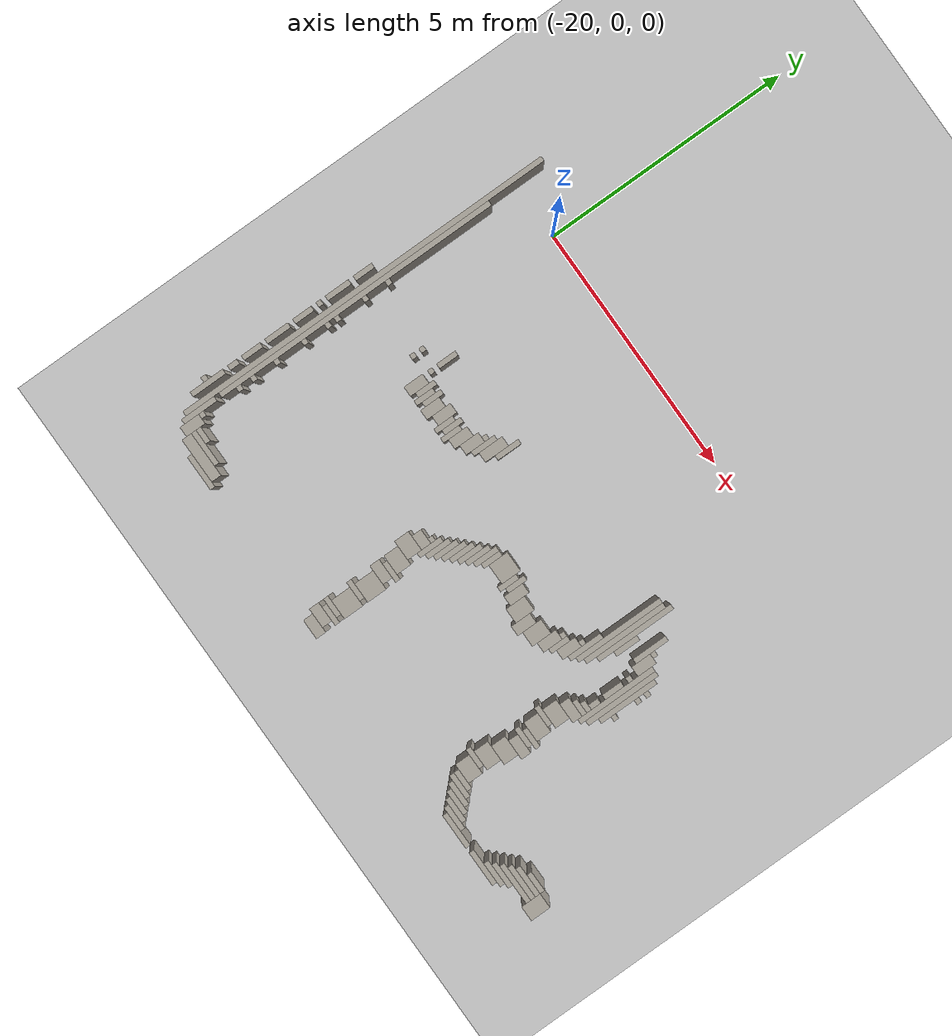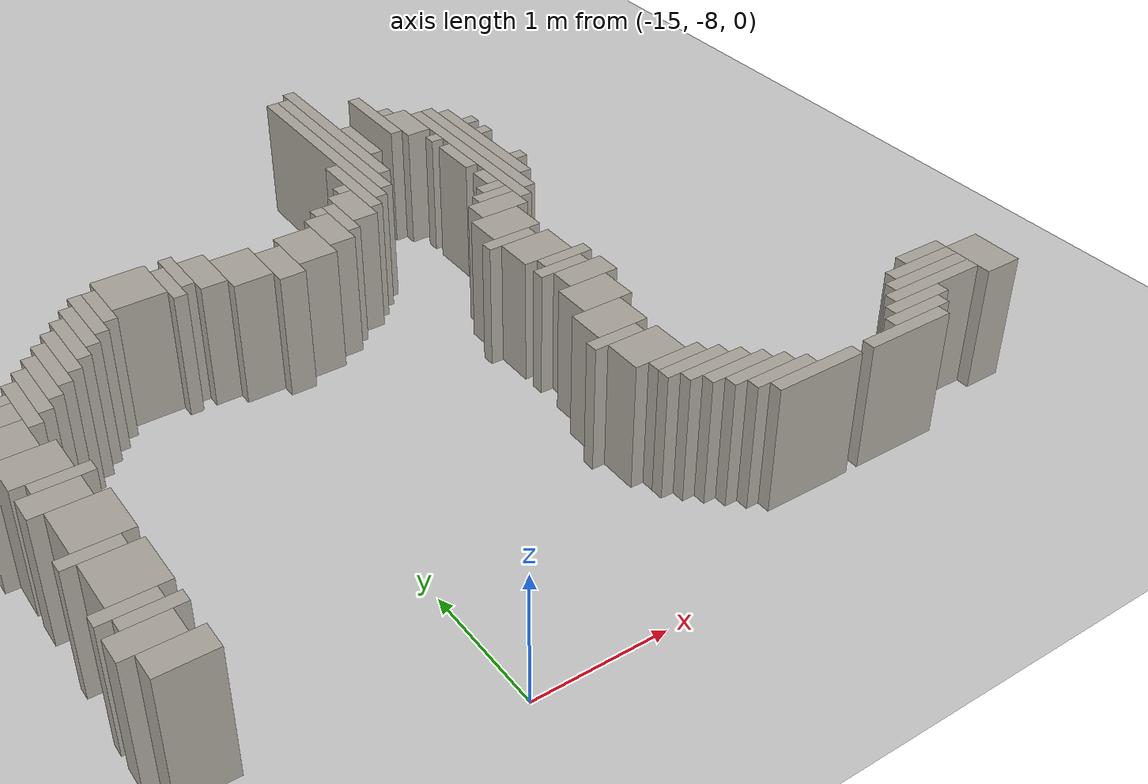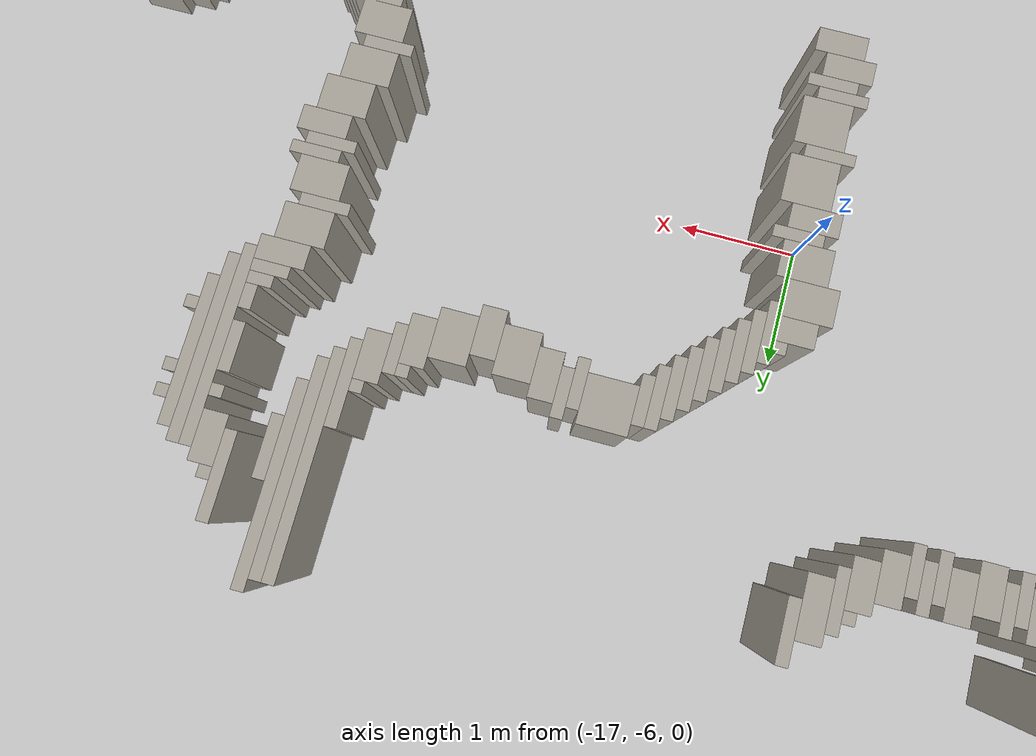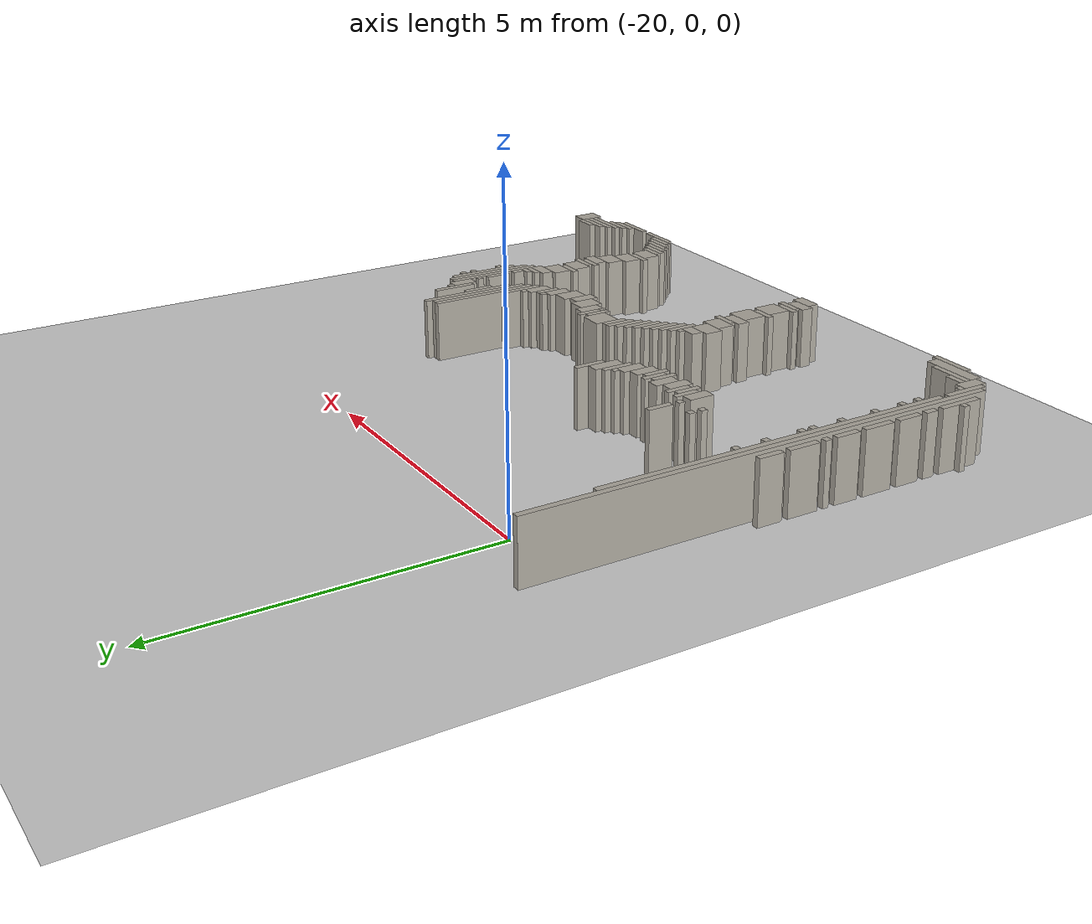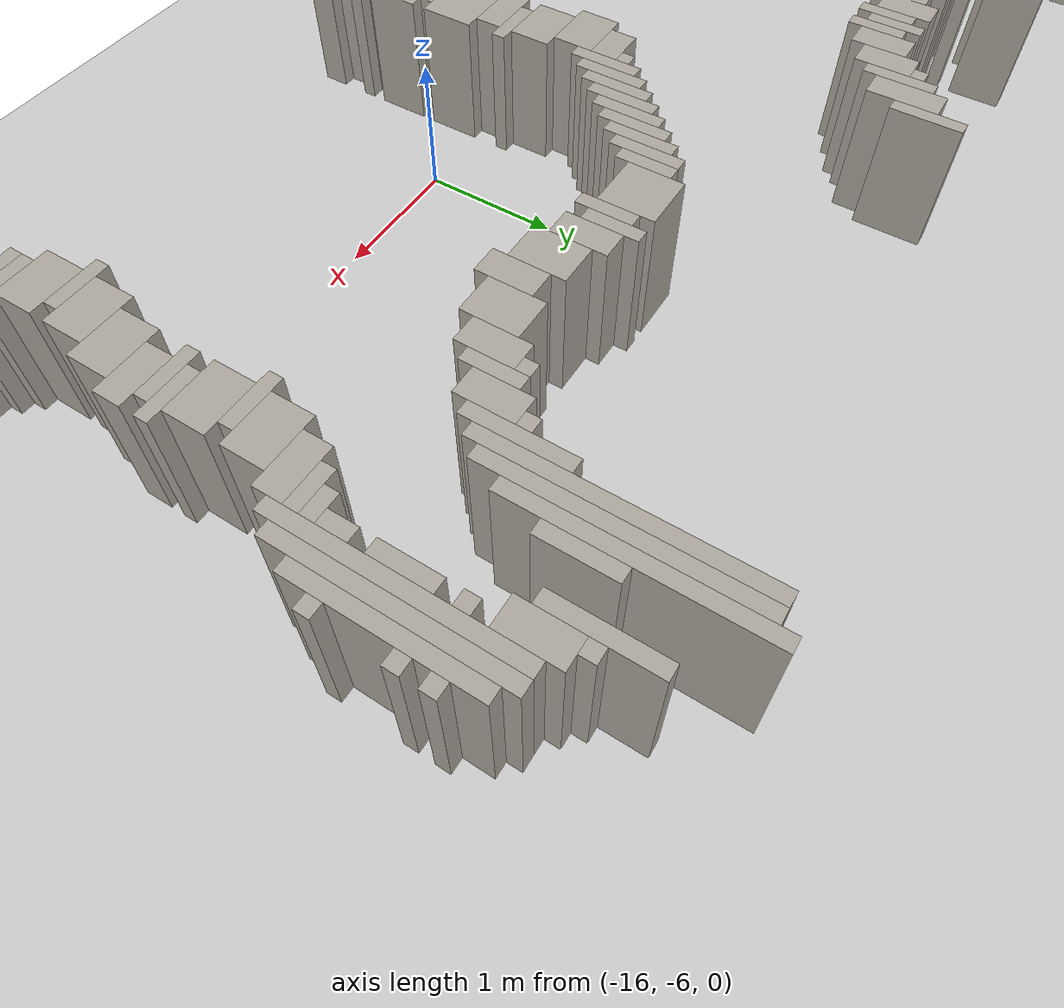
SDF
<sdf version="1.6">
 <world name="willow_office">
  <include><uri>model://sun</uri></include>
  <include><uri>model://ground_plane</uri></include>
  <model name="willow_office_walls">
   <static>true</static>
   <link name="w0002">
    <pose>-20.135 -7.488 0.500 0 0 0</pose>
    <collision name="c"><geometry><box><size>0.700 0.100 1.000</size></box></geometry></collision>
    <visual name="v">
     <geometry><box><size>0.700 0.100 1.000</size></box></geometry>
     <material><ambient>0.68 0.66 0.62 1</ambient><diffuse>0.68 0.66 0.62 1</diffuse></material>
    </visual>
   </link>
   <link name="w0003">
    <pose>-16.785 -7.438 0.500 0 0 0</pose>
    <collision name="c"><geometry><box><size>0.400 0.200 1.000</size></box></geometry></collision>
    <visual name="v">
     <geometry><box><size>0.400 0.200 1.000</size></box></geometry>
     <material><ambient>0.68 0.66 0.62 1</ambient><diffuse>0.68 0.66 0.62 1</diffuse></material>
    </visual>
   </link>
   <link name="w0004">
    <pose>-12.435 -7.488 0.500 0 0 0</pose>
    <collision name="c"><geometry><box><size>0.700 0.100 1.000</size></box></geometry></collision>
    <visual name="v">
     <geometry><box><size>0.700 0.100 1.000</size></box></geometry>
     <material><ambient>0.68 0.66 0.62 1</ambient><diffuse>0.68 0.66 0.62 1</diffuse></material>
    </visual>
   </link>
   <link name="w0005">
    <pose>-11.635 -7.488 0.500 0 0 0</pose>
    <collision name="c"><geometry><box><size>0.700 0.100 1.000</size></box></geometry></collision>
    <visual name="v">
     <geometry><box><size>0.700 0.100 1.000</size></box></geometry>
     <material><ambient>0.68 0.66 0.62 1</ambient><diffuse>0.68 0.66 0.62 1</diffuse></material>
    </visual>
   </link>
   <link name="w0012">
    <pose>-20.335 -7.338 0.500 0 0 0</pose>
    <collision name="c"><geometry><box><size>0.900 0.200 1.000</size></box></geometry></collision>
    <visual name="v">
     <geometry><box><size>0.900 0.200 1.000</size></box></geometry>
     <material><ambient>0.68 0.66 0.62 1</ambient><diffuse>0.68 0.66 0.62 1</diffuse></material>
    </visual>
   </link>
   <link name="w0013">
    <pose>-12.635 -7.388 0.500 0 0 0</pose>
    <collision name="c"><geometry><box><size>0.500 0.100 1.000</size></box></geometry></collision>
    <visual name="v">
     <geometry><box><size>0.500 0.100 1.000</size></box></geometry>
     <material><ambient>0.68 0.66 0.62 1</ambient><diffuse>0.68 0.66 0.62 1</diffuse></material>
    </visual>
   </link>
   <link name="w0014">
    <pose>-11.435 -7.388 0.500 0 0 0</pose>
    <collision name="c"><geometry><box><size>0.500 0.100 1.000</size></box></geometry></collision>
    <visual name="v">
     <geometry><box><size>0.500 0.100 1.000</size></box></geometry>
     <material><ambient>0.68 0.66 0.62 1</ambient><diffuse>0.68 0.66 0.62 1</diffuse></material>
    </visual>
   </link>
   <link name="w0018">
    <pose>-20.885 -7.138 0.500 0 0 0</pose>
    <collision name="c"><geometry><box><size>0.200 0.400 1.000</size></box></geometry></collision>
    <visual name="v">
     <geometry><box><size>0.200 0.400 1.000</size></box></geometry>
     <material><ambient>0.68 0.66 0.62 1</ambient><diffuse>0.68 0.66 0.62 1</diffuse></material>
    </visual>
   </link>
   <link name="w0019">
    <pose>-16.885 -7.238 0.500 0 0 0</pose>
    <collision name="c"><geometry><box><size>0.400 0.200 1.000</size></box></geometry></collision>
    <visual name="v">
     <geometry><box><size>0.400 0.200 1.000</size></box></geometry>
     <material><ambient>0.68 0.66 0.62 1</ambient><diffuse>0.68 0.66 0.62 1</diffuse></material>
    </visual>
   </link>
   <link name="w0020">
    <pose>-12.735 -7.288 0.500 0 0 0</pose>
    <collision name="c"><geometry><box><size>0.500 0.100 1.000</size></box></geometry></collision>
    <visual name="v">
     <geometry><box><size>0.500 0.100 1.000</size></box></geometry>
     <material><ambient>0.68 0.66 0.62 1</ambient><diffuse>0.68 0.66 0.62 1</diffuse></material>
    </visual>
   </link>
   <link name="w0021">
    <pose>-11.335 -7.288 0.500 0 0 0</pose>
    <collision name="c"><geometry><box><size>0.500 0.100 1.000</size></box></geometry></collision>
    <visual name="v">
     <geometry><box><size>0.500 0.100 1.000</size></box></geometry>
     <material><ambient>0.68 0.66 0.62 1</ambient><diffuse>0.68 0.66 0.62 1</diffuse></material>
    </visual>
   </link>
   <link name="w0022">
    <pose>-10.535 -7.138 0.500 0 0 0</pose>
    <collision name="c"><geometry><box><size>0.300 0.400 1.000</size></box></geometry></collision>
    <visual name="v">
     <geometry><box><size>0.300 0.400 1.000</size></box></geometry>
     <material><ambient>0.68 0.66 0.62 1</ambient><diffuse>0.68 0.66 0.62 1</diffuse></material>
    </visual>
   </link>
   <link name="w0028">
    <pose>-21.035 -6.888 0.500 0 0 0</pose>
    <collision name="c"><geometry><box><size>0.100 0.700 1.000</size></box></geometry></collision>
    <visual name="v">
     <geometry><box><size>0.100 0.700 1.000</size></box></geometry>
     <material><ambient>0.68 0.66 0.62 1</ambient><diffuse>0.68 0.66 0.62 1</diffuse></material>
    </visual>
   </link>
   <link name="w0029">
    <pose>-20.435 -7.188 0.500 0 0 0</pose>
    <collision name="c"><geometry><box><size>0.700 0.100 1.000</size></box></geometry></collision>
    <visual name="v">
     <geometry><box><size>0.700 0.100 1.000</size></box></geometry>
     <material><ambient>0.68 0.66 0.62 1</ambient><diffuse>0.68 0.66 0.62 1</diffuse></material>
    </visual>
   </link>
   <link name="w0030">
    <pose>-12.835 -7.188 0.500 0 0 0</pose>
    <collision name="c"><geometry><box><size>0.500 0.100 1.000</size></box></geometry></collision>
    <visual name="v">
     <geometry><box><size>0.500 0.100 1.000</size></box></geometry>
     <material><ambient>0.68 0.66 0.62 1</ambient><diffuse>0.68 0.66 0.62 1</diffuse></material>
    </visual>
   </link>
   <link name="w0031">
    <pose>-11.085 -7.188 0.500 0 0 0</pose>
    <collision name="c"><geometry><box><size>0.800 0.100 1.000</size></box></geometry></collision>
    <visual name="v">
     <geometry><box><size>0.800 0.100 1.000</size></box></geometry>
     <material><ambient>0.68 0.66 0.62 1</ambient><diffuse>0.68 0.66 0.62 1</diffuse></material>
    </visual>
   </link>
   <link name="w0036">
    <pose>-21.135 -3.288 0.500 0 0 0</pose>
    <collision name="c"><geometry><box><size>0.100 7.700 1.000</size></box></geometry></collision>
    <visual name="v">
     <geometry><box><size>0.100 7.700 1.000</size></box></geometry>
     <material><ambient>0.68 0.66 0.62 1</ambient><diffuse>0.68 0.66 0.62 1</diffuse></material>
    </visual>
   </link>
   <link name="w0037">
    <pose>-20.635 -7.088 0.500 0 0 0</pose>
    <collision name="c"><geometry><box><size>0.300 0.100 1.000</size></box></geometry></collision>
    <visual name="v">
     <geometry><box><size>0.300 0.100 1.000</size></box></geometry>
     <material><ambient>0.68 0.66 0.62 1</ambient><diffuse>0.68 0.66 0.62 1</diffuse></material>
    </visual>
   </link>
   <link name="w0038">
    <pose>-16.785 -7.088 0.500 0 0 0</pose>
    <collision name="c"><geometry><box><size>0.400 0.100 1.000</size></box></geometry></collision>
    <visual name="v">
     <geometry><box><size>0.400 0.100 1.000</size></box></geometry>
     <material><ambient>0.68 0.66 0.62 1</ambient><diffuse>0.68 0.66 0.62 1</diffuse></material>
    </visual>
   </link>
   <link name="w0039">
    <pose>-12.935 -7.088 0.500 0 0 0</pose>
    <collision name="c"><geometry><box><size>0.500 0.100 1.000</size></box></geometry></collision>
    <visual name="v">
     <geometry><box><size>0.500 0.100 1.000</size></box></geometry>
     <material><ambient>0.68 0.66 0.62 1</ambient><diffuse>0.68 0.66 0.62 1</diffuse></material>
    </visual>
   </link>
   <link name="w0040">
    <pose>-11.035 -7.088 0.500 0 0 0</pose>
    <collision name="c"><geometry><box><size>0.700 0.100 1.000</size></box></geometry></collision>
    <visual name="v">
     <geometry><box><size>0.700 0.100 1.000</size></box></geometry>
     <material><ambient>0.68 0.66 0.62 1</ambient><diffuse>0.68 0.66 0.62 1</diffuse></material>
    </visual>
   </link>
   <link name="w0047">
    <pose>-16.885 -6.988 0.500 0 0 0</pose>
    <collision name="c"><geometry><box><size>0.400 0.100 1.000</size></box></geometry></collision>
    <visual name="v">
     <geometry><box><size>0.400 0.100 1.000</size></box></geometry>
     <material><ambient>0.68 0.66 0.62 1</ambient><diffuse>0.68 0.66 0.62 1</diffuse></material>
    </visual>
   </link>
   <link name="w0048">
    <pose>-13.035 -6.988 0.500 0 0 0</pose>
    <collision name="c"><geometry><box><size>0.500 0.100 1.000</size></box></geometry></collision>
    <visual name="v">
     <geometry><box><size>0.500 0.100 1.000</size></box></geometry>
     <material><ambient>0.68 0.66 0.62 1</ambient><diffuse>0.68 0.66 0.62 1</diffuse></material>
    </visual>
   </link>
   <link name="w0049">
    <pose>-10.985 -6.988 0.500 0 0 0</pose>
    <collision name="c"><geometry><box><size>0.600 0.100 1.000</size></box></geometry></collision>
    <visual name="v">
     <geometry><box><size>0.600 0.100 1.000</size></box></geometry>
     <material><ambient>0.68 0.66 0.62 1</ambient><diffuse>0.68 0.66 0.62 1</diffuse></material>
    </visual>
   </link>
   <link name="w0054">
    <pose>-20.935 -6.888 0.500 0 0 0</pose>
    <collision name="c"><geometry><box><size>0.100 0.100 1.000</size></box></geometry></collision>
    <visual name="v">
     <geometry><box><size>0.100 0.100 1.000</size></box></geometry>
     <material><ambient>0.68 0.66 0.62 1</ambient><diffuse>0.68 0.66 0.62 1</diffuse></material>
    </visual>
   </link>
   <link name="w0055">
    <pose>-16.785 -6.738 0.500 0 0 0</pose>
    <collision name="c"><geometry><box><size>0.400 0.400 1.000</size></box></geometry></collision>
    <visual name="v">
     <geometry><box><size>0.400 0.400 1.000</size></box></geometry>
     <material><ambient>0.68 0.66 0.62 1</ambient><diffuse>0.68 0.66 0.62 1</diffuse></material>
    </visual>
   </link>
   <link name="w0056">
    <pose>-13.085 -6.888 0.500 0 0 0</pose>
    <collision name="c"><geometry><box><size>0.400 0.100 1.000</size></box></geometry></collision>
    <visual name="v">
     <geometry><box><size>0.400 0.100 1.000</size></box></geometry>
     <material><ambient>0.68 0.66 0.62 1</ambient><diffuse>0.68 0.66 0.62 1</diffuse></material>
    </visual>
   </link>
   <link name="w0057">
    <pose>-10.885 -6.888 0.500 0 0 0</pose>
    <collision name="c"><geometry><box><size>0.400 0.100 1.000</size></box></geometry></collision>
    <visual name="v">
     <geometry><box><size>0.400 0.100 1.000</size></box></geometry>
     <material><ambient>0.68 0.66 0.62 1</ambient><diffuse>0.68 0.66 0.62 1</diffuse></material>
    </visual>
   </link>
   <link name="w0059">
    <pose>-21.335 -6.488 0.500 0 0 0</pose>
    <collision name="c"><geometry><box><size>0.100 0.700 1.000</size></box></geometry></collision>
    <visual name="v">
     <geometry><box><size>0.100 0.700 1.000</size></box></geometry>
     <material><ambient>0.68 0.66 0.62 1</ambient><diffuse>0.68 0.66 0.62 1</diffuse></material>
    </visual>
   </link>
   <link name="w0060">
    <pose>-13.185 -6.688 0.500 0 0 0</pose>
    <collision name="c"><geometry><box><size>0.400 0.300 1.000</size></box></geometry></collision>
    <visual name="v">
     <geometry><box><size>0.400 0.300 1.000</size></box></geometry>
     <material><ambient>0.68 0.66 0.62 1</ambient><diffuse>0.68 0.66 0.62 1</diffuse></material>
    </visual>
   </link>
   <link name="w0064">
    <pose>-21.435 -6.488 0.500 0 0 0</pose>
    <collision name="c"><geometry><box><size>0.100 0.100 1.000</size></box></geometry></collision>
    <visual name="v">
     <geometry><box><size>0.100 0.100 1.000</size></box></geometry>
     <material><ambient>0.68 0.66 0.62 1</ambient><diffuse>0.68 0.66 0.62 1</diffuse></material>
    </visual>
   </link>
   <link name="w0065">
    <pose>-16.885 -6.488 0.500 0 0 0</pose>
    <collision name="c"><geometry><box><size>0.400 0.100 1.000</size></box></geometry></collision>
    <visual name="v">
     <geometry><box><size>0.400 0.100 1.000</size></box></geometry>
     <material><ambient>0.68 0.66 0.62 1</ambient><diffuse>0.68 0.66 0.62 1</diffuse></material>
    </visual>
   </link>
   <link name="w0066">
    <pose>-13.285 -6.488 0.500 0 0 0</pose>
    <collision name="c"><geometry><box><size>0.400 0.100 1.000</size></box></geometry></collision>
    <visual name="v">
     <geometry><box><size>0.400 0.100 1.000</size></box></geometry>
     <material><ambient>0.68 0.66 0.62 1</ambient><diffuse>0.68 0.66 0.62 1</diffuse></material>
    </visual>
   </link>
   <link name="w0068">
    <pose>-21.035 -3.538 0.500 0 0 0</pose>
    <collision name="c"><geometry><box><size>0.100 5.800 1.000</size></box></geometry></collision>
    <visual name="v">
     <geometry><box><size>0.100 5.800 1.000</size></box></geometry>
     <material><ambient>0.68 0.66 0.62 1</ambient><diffuse>0.68 0.66 0.62 1</diffuse></material>
    </visual>
   </link>
   <link name="w0069">
    <pose>-16.785 -6.238 0.500 0 0 0</pose>
    <collision name="c"><geometry><box><size>0.400 0.400 1.000</size></box></geometry></collision>
    <visual name="v">
     <geometry><box><size>0.400 0.400 1.000</size></box></geometry>
     <material><ambient>0.68 0.66 0.62 1</ambient><diffuse>0.68 0.66 0.62 1</diffuse></material>
    </visual>
   </link>
   <link name="w0070">
    <pose>-13.185 -6.288 0.500 0 0 0</pose>
    <collision name="c"><geometry><box><size>0.400 0.300 1.000</size></box></geometry></collision>
    <visual name="v">
     <geometry><box><size>0.400 0.300 1.000</size></box></geometry>
     <material><ambient>0.68 0.66 0.62 1</ambient><diffuse>0.68 0.66 0.62 1</diffuse></material>
    </visual>
   </link>
   <link name="w0074">
    <pose>-20.935 -6.088 0.500 0 0 0</pose>
    <collision name="c"><geometry><box><size>0.100 0.100 1.000</size></box></geometry></collision>
    <visual name="v">
     <geometry><box><size>0.100 0.100 1.000</size></box></geometry>
     <material><ambient>0.68 0.66 0.62 1</ambient><diffuse>0.68 0.66 0.62 1</diffuse></material>
    </visual>
   </link>
   <link name="w0075">
    <pose>-13.085 -5.988 0.500 0 0 0</pose>
    <collision name="c"><geometry><box><size>0.400 0.300 1.000</size></box></geometry></collision>
    <visual name="v">
     <geometry><box><size>0.400 0.300 1.000</size></box></geometry>
     <material><ambient>0.68 0.66 0.62 1</ambient><diffuse>0.68 0.66 0.62 1</diffuse></material>
    </visual>
   </link>
   <link name="w0077">
    <pose>-21.335 -5.938 0.500 0 0 0</pose>
    <collision name="c"><geometry><box><size>0.100 0.200 1.000</size></box></geometry></collision>
    <visual name="v">
     <geometry><box><size>0.100 0.200 1.000</size></box></geometry>
     <material><ambient>0.68 0.66 0.62 1</ambient><diffuse>0.68 0.66 0.62 1</diffuse></material>
    </visual>
   </link>
   <link name="w0078">
    <pose>-16.885 -5.938 0.500 0 0 0</pose>
    <collision name="c"><geometry><box><size>0.400 0.200 1.000</size></box></geometry></collision>
    <visual name="v">
     <geometry><box><size>0.400 0.200 1.000</size></box></geometry>
     <material><ambient>0.68 0.66 0.62 1</ambient><diffuse>0.68 0.66 0.62 1</diffuse></material>
    </visual>
   </link>
   <link name="w0083">
    <pose>-20.935 -5.788 0.500 0 0 0</pose>
    <collision name="c"><geometry><box><size>0.100 0.100 1.000</size></box></geometry></collision>
    <visual name="v">
     <geometry><box><size>0.100 0.100 1.000</size></box></geometry>
     <material><ambient>0.68 0.66 0.62 1</ambient><diffuse>0.68 0.66 0.62 1</diffuse></material>
    </visual>
   </link>
   <link name="w0084">
    <pose>-16.785 -5.788 0.500 0 0 0</pose>
    <collision name="c"><geometry><box><size>0.400 0.100 1.000</size></box></geometry></collision>
    <visual name="v">
     <geometry><box><size>0.400 0.100 1.000</size></box></geometry>
     <material><ambient>0.68 0.66 0.62 1</ambient><diffuse>0.68 0.66 0.62 1</diffuse></material>
    </visual>
   </link>
   <link name="w0085">
    <pose>-12.985 -5.738 0.500 0 0 0</pose>
    <collision name="c"><geometry><box><size>0.400 0.200 1.000</size></box></geometry></collision>
    <visual name="v">
     <geometry><box><size>0.400 0.200 1.000</size></box></geometry>
     <material><ambient>0.68 0.66 0.62 1</ambient><diffuse>0.68 0.66 0.62 1</diffuse></material>
    </visual>
   </link>
   <link name="w0089">
    <pose>-21.335 -5.538 0.500 0 0 0</pose>
    <collision name="c"><geometry><box><size>0.100 0.400 1.000</size></box></geometry></collision>
    <visual name="v">
     <geometry><box><size>0.100 0.400 1.000</size></box></geometry>
     <material><ambient>0.68 0.66 0.62 1</ambient><diffuse>0.68 0.66 0.62 1</diffuse></material>
    </visual>
   </link>
   <link name="w0090">
    <pose>-16.885 -5.588 0.500 0 0 0</pose>
    <collision name="c"><geometry><box><size>0.400 0.300 1.000</size></box></geometry></collision>
    <visual name="v">
     <geometry><box><size>0.400 0.300 1.000</size></box></geometry>
     <material><ambient>0.68 0.66 0.62 1</ambient><diffuse>0.68 0.66 0.62 1</diffuse></material>
    </visual>
   </link>
   <link name="w0096">
    <pose>-13.085 -5.588 0.500 0 0 0</pose>
    <collision name="c"><geometry><box><size>0.400 0.100 1.000</size></box></geometry></collision>
    <visual name="v">
     <geometry><box><size>0.400 0.100 1.000</size></box></geometry>
     <material><ambient>0.68 0.66 0.62 1</ambient><diffuse>0.68 0.66 0.62 1</diffuse></material>
    </visual>
   </link>
   <link name="w0106">
    <pose>-12.985 -5.488 0.500 0 0 0</pose>
    <collision name="c"><geometry><box><size>0.400 0.100 1.000</size></box></geometry></collision>
    <visual name="v">
     <geometry><box><size>0.400 0.100 1.000</size></box></geometry>
     <material><ambient>0.68 0.66 0.62 1</ambient><diffuse>0.68 0.66 0.62 1</diffuse></material>
    </visual>
   </link>
   <link name="w0116">
    <pose>-16.985 -5.288 0.500 0 0 0</pose>
    <collision name="c"><geometry><box><size>0.400 0.300 1.000</size></box></geometry></collision>
    <visual name="v">
     <geometry><box><size>0.400 0.300 1.000</size></box></geometry>
     <material><ambient>0.68 0.66 0.62 1</ambient><diffuse>0.68 0.66 0.62 1</diffuse></material>
    </visual>
   </link>
   <link name="w0117">
    <pose>-13.085 -5.288 0.500 0 0 0</pose>
    <collision name="c"><geometry><box><size>0.400 0.300 1.000</size></box></geometry></collision>
    <visual name="v">
     <geometry><box><size>0.400 0.300 1.000</size></box></geometry>
     <material><ambient>0.68 0.66 0.62 1</ambient><diffuse>0.68 0.66 0.62 1</diffuse></material>
    </visual>
   </link>
   <link name="w0126">
    <pose>-20.935 -5.288 0.500 0 0 0</pose>
    <collision name="c"><geometry><box><size>0.100 0.100 1.000</size></box></geometry></collision>
    <visual name="v">
     <geometry><box><size>0.100 0.100 1.000</size></box></geometry>
     <material><ambient>0.68 0.66 0.62 1</ambient><diffuse>0.68 0.66 0.62 1</diffuse></material>
    </visual>
   </link>
   <link name="w0137">
    <pose>-21.335 -4.988 0.500 0 0 0</pose>
    <collision name="c"><geometry><box><size>0.100 0.500 1.000</size></box></geometry></collision>
    <visual name="v">
     <geometry><box><size>0.100 0.500 1.000</size></box></geometry>
     <material><ambient>0.68 0.66 0.62 1</ambient><diffuse>0.68 0.66 0.62 1</diffuse></material>
    </visual>
   </link>
   <link name="w0138">
    <pose>-16.735 -4.988 0.500 0 0 0</pose>
    <collision name="c"><geometry><box><size>0.100 0.500 1.000</size></box></geometry></collision>
    <visual name="v">
     <geometry><box><size>0.100 0.500 1.000</size></box></geometry>
     <material><ambient>0.68 0.66 0.62 1</ambient><diffuse>0.68 0.66 0.62 1</diffuse></material>
    </visual>
   </link>
   <link name="w0144">
    <pose>-16.935 -5.038 0.500 0 0 0</pose>
    <collision name="c"><geometry><box><size>0.300 0.200 1.000</size></box></geometry></collision>
    <visual name="v">
     <geometry><box><size>0.300 0.200 1.000</size></box></geometry>
     <material><ambient>0.68 0.66 0.62 1</ambient><diffuse>0.68 0.66 0.62 1</diffuse></material>
    </visual>
   </link>
   <link name="w0145">
    <pose>-16.635 -4.888 0.500 0 0 0</pose>
    <collision name="c"><geometry><box><size>0.100 0.500 1.000</size></box></geometry></collision>
    <visual name="v">
     <geometry><box><size>0.100 0.500 1.000</size></box></geometry>
     <material><ambient>0.68 0.66 0.62 1</ambient><diffuse>0.68 0.66 0.62 1</diffuse></material>
    </visual>
   </link>
   <link name="w0146">
    <pose>-13.185 -5.088 0.500 0 0 0</pose>
    <collision name="c"><geometry><box><size>0.400 0.100 1.000</size></box></geometry></collision>
    <visual name="v">
     <geometry><box><size>0.400 0.100 1.000</size></box></geometry>
     <material><ambient>0.68 0.66 0.62 1</ambient><diffuse>0.68 0.66 0.62 1</diffuse></material>
    </visual>
   </link>
   <link name="w0159">
    <pose>-16.535 -4.788 0.500 0 0 0</pose>
    <collision name="c"><geometry><box><size>0.100 0.500 1.000</size></box></geometry></collision>
    <visual name="v">
     <geometry><box><size>0.100 0.500 1.000</size></box></geometry>
     <material><ambient>0.68 0.66 0.62 1</ambient><diffuse>0.68 0.66 0.62 1</diffuse></material>
    </visual>
   </link>
   <link name="w0160">
    <pose>-13.085 -4.888 0.500 0 0 0</pose>
    <collision name="c"><geometry><box><size>0.400 0.300 1.000</size></box></geometry></collision>
    <visual name="v">
     <geometry><box><size>0.400 0.300 1.000</size></box></geometry>
     <material><ambient>0.68 0.66 0.62 1</ambient><diffuse>0.68 0.66 0.62 1</diffuse></material>
    </visual>
   </link>
   <link name="w0176">
    <pose>-16.835 -4.888 0.500 0 0 0</pose>
    <collision name="c"><geometry><box><size>0.100 0.100 1.000</size></box></geometry></collision>
    <visual name="v">
     <geometry><box><size>0.100 0.100 1.000</size></box></geometry>
     <material><ambient>0.68 0.66 0.62 1</ambient><diffuse>0.68 0.66 0.62 1</diffuse></material>
    </visual>
   </link>
   <link name="w0177">
    <pose>-16.435 -4.688 0.500 0 0 0</pose>
    <collision name="c"><geometry><box><size>0.100 0.500 1.000</size></box></geometry></collision>
    <visual name="v">
     <geometry><box><size>0.100 0.500 1.000</size></box></geometry>
     <material><ambient>0.68 0.66 0.62 1</ambient><diffuse>0.68 0.66 0.62 1</diffuse></material>
    </visual>
   </link>
   <link name="w0184">
    <pose>-16.335 -4.588 0.500 0 0 0</pose>
    <collision name="c"><geometry><box><size>0.100 0.500 1.000</size></box></geometry></collision>
    <visual name="v">
     <geometry><box><size>0.100 0.500 1.000</size></box></geometry>
     <material><ambient>0.68 0.66 0.62 1</ambient><diffuse>0.68 0.66 0.62 1</diffuse></material>
    </visual>
   </link>
   <link name="w0192">
    <pose>-20.935 -4.688 0.500 0 0 0</pose>
    <collision name="c"><geometry><box><size>0.100 0.100 1.000</size></box></geometry></collision>
    <visual name="v">
     <geometry><box><size>0.100 0.100 1.000</size></box></geometry>
     <material><ambient>0.68 0.66 0.62 1</ambient><diffuse>0.68 0.66 0.62 1</diffuse></material>
    </visual>
   </link>
   <link name="w0193">
    <pose>-16.235 -4.488 0.500 0 0 0</pose>
    <collision name="c"><geometry><box><size>0.100 0.500 1.000</size></box></geometry></collision>
    <visual name="v">
     <geometry><box><size>0.100 0.500 1.000</size></box></geometry>
     <material><ambient>0.68 0.66 0.62 1</ambient><diffuse>0.68 0.66 0.62 1</diffuse></material>
    </visual>
   </link>
   <link name="w0194">
    <pose>-12.985 -4.638 0.500 0 0 0</pose>
    <collision name="c"><geometry><box><size>0.400 0.200 1.000</size></box></geometry></collision>
    <visual name="v">
     <geometry><box><size>0.400 0.200 1.000</size></box></geometry>
     <material><ambient>0.68 0.66 0.62 1</ambient><diffuse>0.68 0.66 0.62 1</diffuse></material>
    </visual>
   </link>
   <link name="w0203">
    <pose>-21.335 -4.438 0.500 0 0 0</pose>
    <collision name="c"><geometry><box><size>0.100 0.400 1.000</size></box></geometry></collision>
    <visual name="v">
     <geometry><box><size>0.100 0.400 1.000</size></box></geometry>
     <material><ambient>0.68 0.66 0.62 1</ambient><diffuse>0.68 0.66 0.62 1</diffuse></material>
    </visual>
   </link>
   <link name="w0204">
    <pose>-16.135 -4.388 0.500 0 0 0</pose>
    <collision name="c"><geometry><box><size>0.100 0.500 1.000</size></box></geometry></collision>
    <visual name="v">
     <geometry><box><size>0.100 0.500 1.000</size></box></geometry>
     <material><ambient>0.68 0.66 0.62 1</ambient><diffuse>0.68 0.66 0.62 1</diffuse></material>
    </visual>
   </link>
   <link name="w0205">
    <pose>-14.685 -4.438 0.500 0 0 0</pose>
    <collision name="c"><geometry><box><size>0.200 0.400 1.000</size></box></geometry></collision>
    <visual name="v">
     <geometry><box><size>0.200 0.400 1.000</size></box></geometry>
     <material><ambient>0.68 0.66 0.62 1</ambient><diffuse>0.68 0.66 0.62 1</diffuse></material>
    </visual>
   </link>
   <link name="w0206">
    <pose>-12.735 -3.838 0.500 0 0 0</pose>
    <collision name="c"><geometry><box><size>0.100 1.600 1.000</size></box></geometry></collision>
    <visual name="v">
     <geometry><box><size>0.100 1.600 1.000</size></box></geometry>
     <material><ambient>0.68 0.66 0.62 1</ambient><diffuse>0.68 0.66 0.62 1</diffuse></material>
    </visual>
   </link>
   <link name="w0211">
    <pose>-16.035 -4.288 0.500 0 0 0</pose>
    <collision name="c"><geometry><box><size>0.100 0.500 1.000</size></box></geometry></collision>
    <visual name="v">
     <geometry><box><size>0.100 0.500 1.000</size></box></geometry>
     <material><ambient>0.68 0.66 0.62 1</ambient><diffuse>0.68 0.66 0.62 1</diffuse></material>
    </visual>
   </link>
   <link name="w0212">
    <pose>-14.935 -4.338 0.500 0 0 0</pose>
    <collision name="c"><geometry><box><size>0.300 0.400 1.000</size></box></geometry></collision>
    <visual name="v">
     <geometry><box><size>0.300 0.400 1.000</size></box></geometry>
     <material><ambient>0.68 0.66 0.62 1</ambient><diffuse>0.68 0.66 0.62 1</diffuse></material>
    </visual>
   </link>
   <link name="w0213">
    <pose>-14.435 -4.338 0.500 0 0 0</pose>
    <collision name="c"><geometry><box><size>0.300 0.400 1.000</size></box></geometry></collision>
    <visual name="v">
     <geometry><box><size>0.300 0.400 1.000</size></box></geometry>
     <material><ambient>0.68 0.66 0.62 1</ambient><diffuse>0.68 0.66 0.62 1</diffuse></material>
    </visual>
   </link>
   <link name="w0214">
    <pose>-12.935 -4.488 0.500 0 0 0</pose>
    <collision name="c"><geometry><box><size>0.300 0.100 1.000</size></box></geometry></collision>
    <visual name="v">
     <geometry><box><size>0.300 0.100 1.000</size></box></geometry>
     <material><ambient>0.68 0.66 0.62 1</ambient><diffuse>0.68 0.66 0.62 1</diffuse></material>
    </visual>
   </link>
   <link name="w0215">
    <pose>-12.635 -3.788 0.500 0 0 0</pose>
    <collision name="c"><geometry><box><size>0.100 1.500 1.000</size></box></geometry></collision>
    <visual name="v">
     <geometry><box><size>0.100 1.500 1.000</size></box></geometry>
     <material><ambient>0.68 0.66 0.62 1</ambient><diffuse>0.68 0.66 0.62 1</diffuse></material>
    </visual>
   </link>
   <link name="w0219">
    <pose>-15.935 -4.238 0.500 0 0 0</pose>
    <collision name="c"><geometry><box><size>0.100 0.400 1.000</size></box></geometry></collision>
    <visual name="v">
     <geometry><box><size>0.100 0.400 1.000</size></box></geometry>
     <material><ambient>0.68 0.66 0.62 1</ambient><diffuse>0.68 0.66 0.62 1</diffuse></material>
    </visual>
   </link>
   <link name="w0220">
    <pose>-15.435 -4.238 0.500 0 0 0</pose>
    <collision name="c"><geometry><box><size>0.100 0.400 1.000</size></box></geometry></collision>
    <visual name="v">
     <geometry><box><size>0.100 0.400 1.000</size></box></geometry>
     <material><ambient>0.68 0.66 0.62 1</ambient><diffuse>0.68 0.66 0.62 1</diffuse></material>
    </visual>
   </link>
   <link name="w0221">
    <pose>-15.185 -4.238 0.500 0 0 0</pose>
    <collision name="c"><geometry><box><size>0.200 0.400 1.000</size></box></geometry></collision>
    <visual name="v">
     <geometry><box><size>0.200 0.400 1.000</size></box></geometry>
     <material><ambient>0.68 0.66 0.62 1</ambient><diffuse>0.68 0.66 0.62 1</diffuse></material>
    </visual>
   </link>
   <link name="w0222">
    <pose>-14.185 -4.238 0.500 0 0 0</pose>
    <collision name="c"><geometry><box><size>0.200 0.400 1.000</size></box></geometry></collision>
    <visual name="v">
     <geometry><box><size>0.200 0.400 1.000</size></box></geometry>
     <material><ambient>0.68 0.66 0.62 1</ambient><diffuse>0.68 0.66 0.62 1</diffuse></material>
    </visual>
   </link>
   <link name="w0223">
    <pose>-12.885 -4.388 0.500 0 0 0</pose>
    <collision name="c"><geometry><box><size>0.200 0.100 1.000</size></box></geometry></collision>
    <visual name="v">
     <geometry><box><size>0.200 0.100 1.000</size></box></geometry>
     <material><ambient>0.68 0.66 0.62 1</ambient><diffuse>0.68 0.66 0.62 1</diffuse></material>
    </visual>
   </link>
   <link name="w0227">
    <pose>-15.685 -4.138 0.500 0 0 0</pose>
    <collision name="c"><geometry><box><size>0.400 0.400 1.000</size></box></geometry></collision>
    <visual name="v">
     <geometry><box><size>0.400 0.400 1.000</size></box></geometry>
     <material><ambient>0.68 0.66 0.62 1</ambient><diffuse>0.68 0.66 0.62 1</diffuse></material>
    </visual>
   </link>
   <link name="w0228">
    <pose>-15.335 -4.138 0.500 0 0 0</pose>
    <collision name="c"><geometry><box><size>0.100 0.400 1.000</size></box></geometry></collision>
    <visual name="v">
     <geometry><box><size>0.100 0.400 1.000</size></box></geometry>
     <material><ambient>0.68 0.66 0.62 1</ambient><diffuse>0.68 0.66 0.62 1</diffuse></material>
    </visual>
   </link>
   <link name="w0229">
    <pose>-14.035 -4.138 0.500 0 0 0</pose>
    <collision name="c"><geometry><box><size>0.100 0.400 1.000</size></box></geometry></collision>
    <visual name="v">
     <geometry><box><size>0.100 0.400 1.000</size></box></geometry>
     <material><ambient>0.68 0.66 0.62 1</ambient><diffuse>0.68 0.66 0.62 1</diffuse></material>
    </visual>
   </link>
   <link name="w0230">
    <pose>-12.835 -4.238 0.500 0 0 0</pose>
    <collision name="c"><geometry><box><size>0.100 0.200 1.000</size></box></geometry></collision>
    <visual name="v">
     <geometry><box><size>0.100 0.200 1.000</size></box></geometry>
     <material><ambient>0.68 0.66 0.62 1</ambient><diffuse>0.68 0.66 0.62 1</diffuse></material>
    </visual>
   </link>
   <link name="w0231">
    <pose>-12.535 -3.738 0.500 0 0 0</pose>
    <collision name="c"><geometry><box><size>0.100 1.200 1.000</size></box></geometry></collision>
    <visual name="v">
     <geometry><box><size>0.100 1.200 1.000</size></box></geometry>
     <material><ambient>0.68 0.66 0.62 1</ambient><diffuse>0.68 0.66 0.62 1</diffuse></material>
    </visual>
   </link>
   <link name="w0240">
    <pose>-20.935 -4.188 0.500 0 0 0</pose>
    <collision name="c"><geometry><box><size>0.100 0.100 1.000</size></box></geometry></collision>
    <visual name="v">
     <geometry><box><size>0.100 0.100 1.000</size></box></geometry>
     <material><ambient>0.68 0.66 0.62 1</ambient><diffuse>0.68 0.66 0.62 1</diffuse></material>
    </visual>
   </link>
   <link name="w0241">
    <pose>-13.885 -4.038 0.500 0 0 0</pose>
    <collision name="c"><geometry><box><size>0.200 0.400 1.000</size></box></geometry></collision>
    <visual name="v">
     <geometry><box><size>0.200 0.400 1.000</size></box></geometry>
     <material><ambient>0.68 0.66 0.62 1</ambient><diffuse>0.68 0.66 0.62 1</diffuse></material>
    </visual>
   </link>
   <link name="w0247">
    <pose>-21.335 -4.088 0.500 0 0 0</pose>
    <collision name="c"><geometry><box><size>0.100 0.100 1.000</size></box></geometry></collision>
    <visual name="v">
     <geometry><box><size>0.100 0.100 1.000</size></box></geometry>
     <material><ambient>0.68 0.66 0.62 1</ambient><diffuse>0.68 0.66 0.62 1</diffuse></material>
    </visual>
   </link>
   <link name="w0248">
    <pose>-13.735 -3.788 0.500 0 0 0</pose>
    <collision name="c"><geometry><box><size>0.100 0.700 1.000</size></box></geometry></collision>
    <visual name="v">
     <geometry><box><size>0.100 0.700 1.000</size></box></geometry>
     <material><ambient>0.68 0.66 0.62 1</ambient><diffuse>0.68 0.66 0.62 1</diffuse></material>
    </visual>
   </link>
   <link name="w0249">
    <pose>-12.435 -4.088 0.500 0 0 0</pose>
    <collision name="c"><geometry><box><size>0.100 0.100 1.000</size></box></geometry></collision>
    <visual name="v">
     <geometry><box><size>0.100 0.100 1.000</size></box></geometry>
     <material><ambient>0.68 0.66 0.62 1</ambient><diffuse>0.68 0.66 0.62 1</diffuse></material>
    </visual>
   </link>
   <link name="w0255">
    <pose>-20.935 -3.988 0.500 0 0 0</pose>
    <collision name="c"><geometry><box><size>0.100 0.100 1.000</size></box></geometry></collision>
    <visual name="v">
     <geometry><box><size>0.100 0.100 1.000</size></box></geometry>
     <material><ambient>0.68 0.66 0.62 1</ambient><diffuse>0.68 0.66 0.62 1</diffuse></material>
    </visual>
   </link>
   <link name="w0256">
    <pose>-14.135 -3.988 0.500 0 0 0</pose>
    <collision name="c"><geometry><box><size>0.100 0.100 1.000</size></box></geometry></collision>
    <visual name="v">
     <geometry><box><size>0.100 0.100 1.000</size></box></geometry>
     <material><ambient>0.68 0.66 0.62 1</ambient><diffuse>0.68 0.66 0.62 1</diffuse></material>
    </visual>
   </link>
   <link name="w0257">
    <pose>-13.635 -3.138 0.500 0 0 0</pose>
    <collision name="c"><geometry><box><size>0.100 1.800 1.000</size></box></geometry></collision>
    <visual name="v">
     <geometry><box><size>0.100 1.800 1.000</size></box></geometry>
     <material><ambient>0.68 0.66 0.62 1</ambient><diffuse>0.68 0.66 0.62 1</diffuse></material>
    </visual>
   </link>
   <link name="w0258">
    <pose>-12.835 -3.838 0.500 0 0 0</pose>
    <collision name="c"><geometry><box><size>0.100 0.400 1.000</size></box></geometry></collision>
    <visual name="v">
     <geometry><box><size>0.100 0.400 1.000</size></box></geometry>
     <material><ambient>0.68 0.66 0.62 1</ambient><diffuse>0.68 0.66 0.62 1</diffuse></material>
    </visual>
   </link>
   <link name="w0262">
    <pose>-21.335 -3.688 0.500 0 0 0</pose>
    <collision name="c"><geometry><box><size>0.100 0.500 1.000</size></box></geometry></collision>
    <visual name="v">
     <geometry><box><size>0.100 0.500 1.000</size></box></geometry>
     <material><ambient>0.68 0.66 0.62 1</ambient><diffuse>0.68 0.66 0.62 1</diffuse></material>
    </visual>
   </link>
   <link name="w0263">
    <pose>-13.535 -3.088 0.500 0 0 0</pose>
    <collision name="c"><geometry><box><size>0.100 1.700 1.000</size></box></geometry></collision>
    <visual name="v">
     <geometry><box><size>0.100 1.700 1.000</size></box></geometry>
     <material><ambient>0.68 0.66 0.62 1</ambient><diffuse>0.68 0.66 0.62 1</diffuse></material>
    </visual>
   </link>
   <link name="w0266">
    <pose>-13.835 -3.788 0.500 0 0 0</pose>
    <collision name="c"><geometry><box><size>0.100 0.100 1.000</size></box></geometry></collision>
    <visual name="v">
     <geometry><box><size>0.100 0.100 1.000</size></box></geometry>
     <material><ambient>0.68 0.66 0.62 1</ambient><diffuse>0.68 0.66 0.62 1</diffuse></material>
    </visual>
   </link>
   <link name="w0271">
    <pose>-19.185 -3.538 0.500 0 0 0</pose>
    <collision name="c"><geometry><box><size>0.200 0.400 1.000</size></box></geometry></collision>
    <visual name="v">
     <geometry><box><size>0.200 0.400 1.000</size></box></geometry>
     <material><ambient>0.68 0.66 0.62 1</ambient><diffuse>0.68 0.66 0.62 1</diffuse></material>
    </visual>
   </link>
   <link name="w0272">
    <pose>-18.935 -3.538 0.500 0 0 0</pose>
    <collision name="c"><geometry><box><size>0.100 0.400 1.000</size></box></geometry></collision>
    <visual name="v">
     <geometry><box><size>0.100 0.400 1.000</size></box></geometry>
     <material><ambient>0.68 0.66 0.62 1</ambient><diffuse>0.68 0.66 0.62 1</diffuse></material>
    </visual>
   </link>
   <link name="w0273">
    <pose>-18.685 -3.538 0.500 0 0 0</pose>
    <collision name="c"><geometry><box><size>0.200 0.400 1.000</size></box></geometry></collision>
    <visual name="v">
     <geometry><box><size>0.200 0.400 1.000</size></box></geometry>
     <material><ambient>0.68 0.66 0.62 1</ambient><diffuse>0.68 0.66 0.62 1</diffuse></material>
    </visual>
   </link>
   <link name="w0274">
    <pose>-18.335 -3.538 0.500 0 0 0</pose>
    <collision name="c"><geometry><box><size>0.100 0.400 1.000</size></box></geometry></collision>
    <visual name="v">
     <geometry><box><size>0.100 0.400 1.000</size></box></geometry>
     <material><ambient>0.68 0.66 0.62 1</ambient><diffuse>0.68 0.66 0.62 1</diffuse></material>
    </visual>
   </link>
   <link name="w0275">
    <pose>-18.135 -3.538 0.500 0 0 0</pose>
    <collision name="c"><geometry><box><size>0.100 0.400 1.000</size></box></geometry></collision>
    <visual name="v">
     <geometry><box><size>0.100 0.400 1.000</size></box></geometry>
     <material><ambient>0.68 0.66 0.62 1</ambient><diffuse>0.68 0.66 0.62 1</diffuse></material>
    </visual>
   </link>
   <link name="w0276">
    <pose>-13.435 -2.938 0.500 0 0 0</pose>
    <collision name="c"><geometry><box><size>0.100 1.600 1.000</size></box></geometry></collision>
    <visual name="v">
     <geometry><box><size>0.100 1.600 1.000</size></box></geometry>
     <material><ambient>0.68 0.66 0.62 1</ambient><diffuse>0.68 0.66 0.62 1</diffuse></material>
    </visual>
   </link>
   <link name="w0280">
    <pose>-19.035 -3.438 0.500 0 0 0</pose>
    <collision name="c"><geometry><box><size>0.100 0.400 1.000</size></box></geometry></collision>
    <visual name="v">
     <geometry><box><size>0.100 0.400 1.000</size></box></geometry>
     <material><ambient>0.68 0.66 0.62 1</ambient><diffuse>0.68 0.66 0.62 1</diffuse></material>
    </visual>
   </link>
   <link name="w0281">
    <pose>-18.835 -3.438 0.500 0 0 0</pose>
    <collision name="c"><geometry><box><size>0.100 0.400 1.000</size></box></geometry></collision>
    <visual name="v">
     <geometry><box><size>0.100 0.400 1.000</size></box></geometry>
     <material><ambient>0.68 0.66 0.62 1</ambient><diffuse>0.68 0.66 0.62 1</diffuse></material>
    </visual>
   </link>
   <link name="w0282">
    <pose>-18.485 -3.438 0.500 0 0 0</pose>
    <collision name="c"><geometry><box><size>0.200 0.400 1.000</size></box></geometry></collision>
    <visual name="v">
     <geometry><box><size>0.200 0.400 1.000</size></box></geometry>
     <material><ambient>0.68 0.66 0.62 1</ambient><diffuse>0.68 0.66 0.62 1</diffuse></material>
    </visual>
   </link>
   <link name="w0283">
    <pose>-18.235 -3.438 0.500 0 0 0</pose>
    <collision name="c"><geometry><box><size>0.100 0.400 1.000</size></box></geometry></collision>
    <visual name="v">
     <geometry><box><size>0.100 0.400 1.000</size></box></geometry>
     <material><ambient>0.68 0.66 0.62 1</ambient><diffuse>0.68 0.66 0.62 1</diffuse></material>
    </visual>
   </link>
   <link name="w0284">
    <pose>-17.985 -3.438 0.500 0 0 0</pose>
    <collision name="c"><geometry><box><size>0.200 0.400 1.000</size></box></geometry></collision>
    <visual name="v">
     <geometry><box><size>0.200 0.400 1.000</size></box></geometry>
     <material><ambient>0.68 0.66 0.62 1</ambient><diffuse>0.68 0.66 0.62 1</diffuse></material>
    </visual>
   </link>
   <link name="w0285">
    <pose>-12.435 -3.588 0.500 0 0 0</pose>
    <collision name="c"><geometry><box><size>0.100 0.100 1.000</size></box></geometry></collision>
    <visual name="v">
     <geometry><box><size>0.100 0.100 1.000</size></box></geometry>
     <material><ambient>0.68 0.66 0.62 1</ambient><diffuse>0.68 0.66 0.62 1</diffuse></material>
    </visual>
   </link>
   <link name="w0292">
    <pose>-17.785 -3.338 0.500 0 0 0</pose>
    <collision name="c"><geometry><box><size>0.200 0.400 1.000</size></box></geometry></collision>
    <visual name="v">
     <geometry><box><size>0.200 0.400 1.000</size></box></geometry>
     <material><ambient>0.68 0.66 0.62 1</ambient><diffuse>0.68 0.66 0.62 1</diffuse></material>
    </visual>
   </link>
   <link name="w0293">
    <pose>-12.835 -3.488 0.500 0 0 0</pose>
    <collision name="c"><geometry><box><size>0.100 0.100 1.000</size></box></geometry></collision>
    <visual name="v">
     <geometry><box><size>0.100 0.100 1.000</size></box></geometry>
     <material><ambient>0.68 0.66 0.62 1</ambient><diffuse>0.68 0.66 0.62 1</diffuse></material>
    </visual>
   </link>
   <link name="w0299">
    <pose>-20.935 -3.388 0.500 0 0 0</pose>
    <collision name="c"><geometry><box><size>0.100 0.100 1.000</size></box></geometry></collision>
    <visual name="v">
     <geometry><box><size>0.100 0.100 1.000</size></box></geometry>
     <material><ambient>0.68 0.66 0.62 1</ambient><diffuse>0.68 0.66 0.62 1</diffuse></material>
    </visual>
   </link>
   <link name="w0300">
    <pose>-17.635 -3.188 0.500 0 0 0</pose>
    <collision name="c"><geometry><box><size>0.100 0.500 1.000</size></box></geometry></collision>
    <visual name="v">
     <geometry><box><size>0.100 0.500 1.000</size></box></geometry>
     <material><ambient>0.68 0.66 0.62 1</ambient><diffuse>0.68 0.66 0.62 1</diffuse></material>
    </visual>
   </link>
   <link name="w0301">
    <pose>-13.335 -3.188 0.500 0 0 0</pose>
    <collision name="c"><geometry><box><size>0.100 0.500 1.000</size></box></geometry></collision>
    <visual name="v">
     <geometry><box><size>0.100 0.500 1.000</size></box></geometry>
     <material><ambient>0.68 0.66 0.62 1</ambient><diffuse>0.68 0.66 0.62 1</diffuse></material>
    </visual>
   </link>
   <link name="w0302">
    <pose>-12.435 -3.388 0.500 0 0 0</pose>
    <collision name="c"><geometry><box><size>0.100 0.100 1.000</size></box></geometry></collision>
    <visual name="v">
     <geometry><box><size>0.100 0.100 1.000</size></box></geometry>
     <material><ambient>0.68 0.66 0.62 1</ambient><diffuse>0.68 0.66 0.62 1</diffuse></material>
    </visual>
   </link>
   <link name="w0309">
    <pose>-21.335 -3.138 0.500 0 0 0</pose>
    <collision name="c"><geometry><box><size>0.100 0.400 1.000</size></box></geometry></collision>
    <visual name="v">
     <geometry><box><size>0.100 0.400 1.000</size></box></geometry>
     <material><ambient>0.68 0.66 0.62 1</ambient><diffuse>0.68 0.66 0.62 1</diffuse></material>
    </visual>
   </link>
   <link name="w0310">
    <pose>-19.635 -3.288 0.500 0 0 0</pose>
    <collision name="c"><geometry><box><size>0.100 0.100 1.000</size></box></geometry></collision>
    <visual name="v">
     <geometry><box><size>0.100 0.100 1.000</size></box></geometry>
     <material><ambient>0.68 0.66 0.62 1</ambient><diffuse>0.68 0.66 0.62 1</diffuse></material>
    </visual>
   </link>
   <link name="w0311">
    <pose>-17.485 -3.088 0.500 0 0 0</pose>
    <collision name="c"><geometry><box><size>0.200 0.500 1.000</size></box></geometry></collision>
    <visual name="v">
     <geometry><box><size>0.200 0.500 1.000</size></box></geometry>
     <material><ambient>0.68 0.66 0.62 1</ambient><diffuse>0.68 0.66 0.62 1</diffuse></material>
    </visual>
   </link>
   <link name="w0312">
    <pose>-12.885 -3.138 0.500 0 0 0</pose>
    <collision name="c"><geometry><box><size>0.200 0.400 1.000</size></box></geometry></collision>
    <visual name="v">
     <geometry><box><size>0.200 0.400 1.000</size></box></geometry>
     <material><ambient>0.68 0.66 0.62 1</ambient><diffuse>0.68 0.66 0.62 1</diffuse></material>
    </visual>
   </link>
   <link name="w0317">
    <pose>-19.235 -3.188 0.500 0 0 0</pose>
    <collision name="c"><geometry><box><size>0.100 0.100 1.000</size></box></geometry></collision>
    <visual name="v">
     <geometry><box><size>0.100 0.100 1.000</size></box></geometry>
     <material><ambient>0.68 0.66 0.62 1</ambient><diffuse>0.68 0.66 0.62 1</diffuse></material>
    </visual>
   </link>
   <link name="w0318">
    <pose>-13.035 -2.888 0.500 0 0 0</pose>
    <collision name="c"><geometry><box><size>0.100 0.700 1.000</size></box></geometry></collision>
    <visual name="v">
     <geometry><box><size>0.100 0.700 1.000</size></box></geometry>
     <material><ambient>0.68 0.66 0.62 1</ambient><diffuse>0.68 0.66 0.62 1</diffuse></material>
    </visual>
   </link>
   <link name="w0324">
    <pose>-19.635 -3.088 0.500 0 0 0</pose>
    <collision name="c"><geometry><box><size>0.100 0.100 1.000</size></box></geometry></collision>
    <visual name="v">
     <geometry><box><size>0.100 0.100 1.000</size></box></geometry>
     <material><ambient>0.68 0.66 0.62 1</ambient><diffuse>0.68 0.66 0.62 1</diffuse></material>
    </visual>
   </link>
   <link name="w0325">
    <pose>-17.735 -3.088 0.500 0 0 0</pose>
    <collision name="c"><geometry><box><size>0.100 0.100 1.000</size></box></geometry></collision>
    <visual name="v">
     <geometry><box><size>0.100 0.100 1.000</size></box></geometry>
     <material><ambient>0.68 0.66 0.62 1</ambient><diffuse>0.68 0.66 0.62 1</diffuse></material>
    </visual>
   </link>
   <link name="w0326">
    <pose>-17.335 -2.888 0.500 0 0 0</pose>
    <collision name="c"><geometry><box><size>0.100 0.500 1.000</size></box></geometry></collision>
    <visual name="v">
     <geometry><box><size>0.100 0.500 1.000</size></box></geometry>
     <material><ambient>0.68 0.66 0.62 1</ambient><diffuse>0.68 0.66 0.62 1</diffuse></material>
    </visual>
   </link>
   <link name="w0328">
    <pose>-19.235 -2.838 0.500 0 0 0</pose>
    <collision name="c"><geometry><box><size>0.100 0.400 1.000</size></box></geometry></collision>
    <visual name="v">
     <geometry><box><size>0.100 0.400 1.000</size></box></geometry>
     <material><ambient>0.68 0.66 0.62 1</ambient><diffuse>0.68 0.66 0.62 1</diffuse></material>
    </visual>
   </link>
   <link name="w0340">
    <pose>-20.935 -2.888 0.500 0 0 0</pose>
    <collision name="c"><geometry><box><size>0.100 0.100 1.000</size></box></geometry></collision>
    <visual name="v">
     <geometry><box><size>0.100 0.100 1.000</size></box></geometry>
     <material><ambient>0.68 0.66 0.62 1</ambient><diffuse>0.68 0.66 0.62 1</diffuse></material>
    </visual>
   </link>
   <link name="w0343">
    <pose>-12.935 -2.888 0.500 0 0 0</pose>
    <collision name="c"><geometry><box><size>0.100 0.100 1.000</size></box></geometry></collision>
    <visual name="v">
     <geometry><box><size>0.100 0.100 1.000</size></box></geometry>
     <material><ambient>0.68 0.66 0.62 1</ambient><diffuse>0.68 0.66 0.62 1</diffuse></material>
    </visual>
   </link>
  </model>
 </world>
</sdf>
